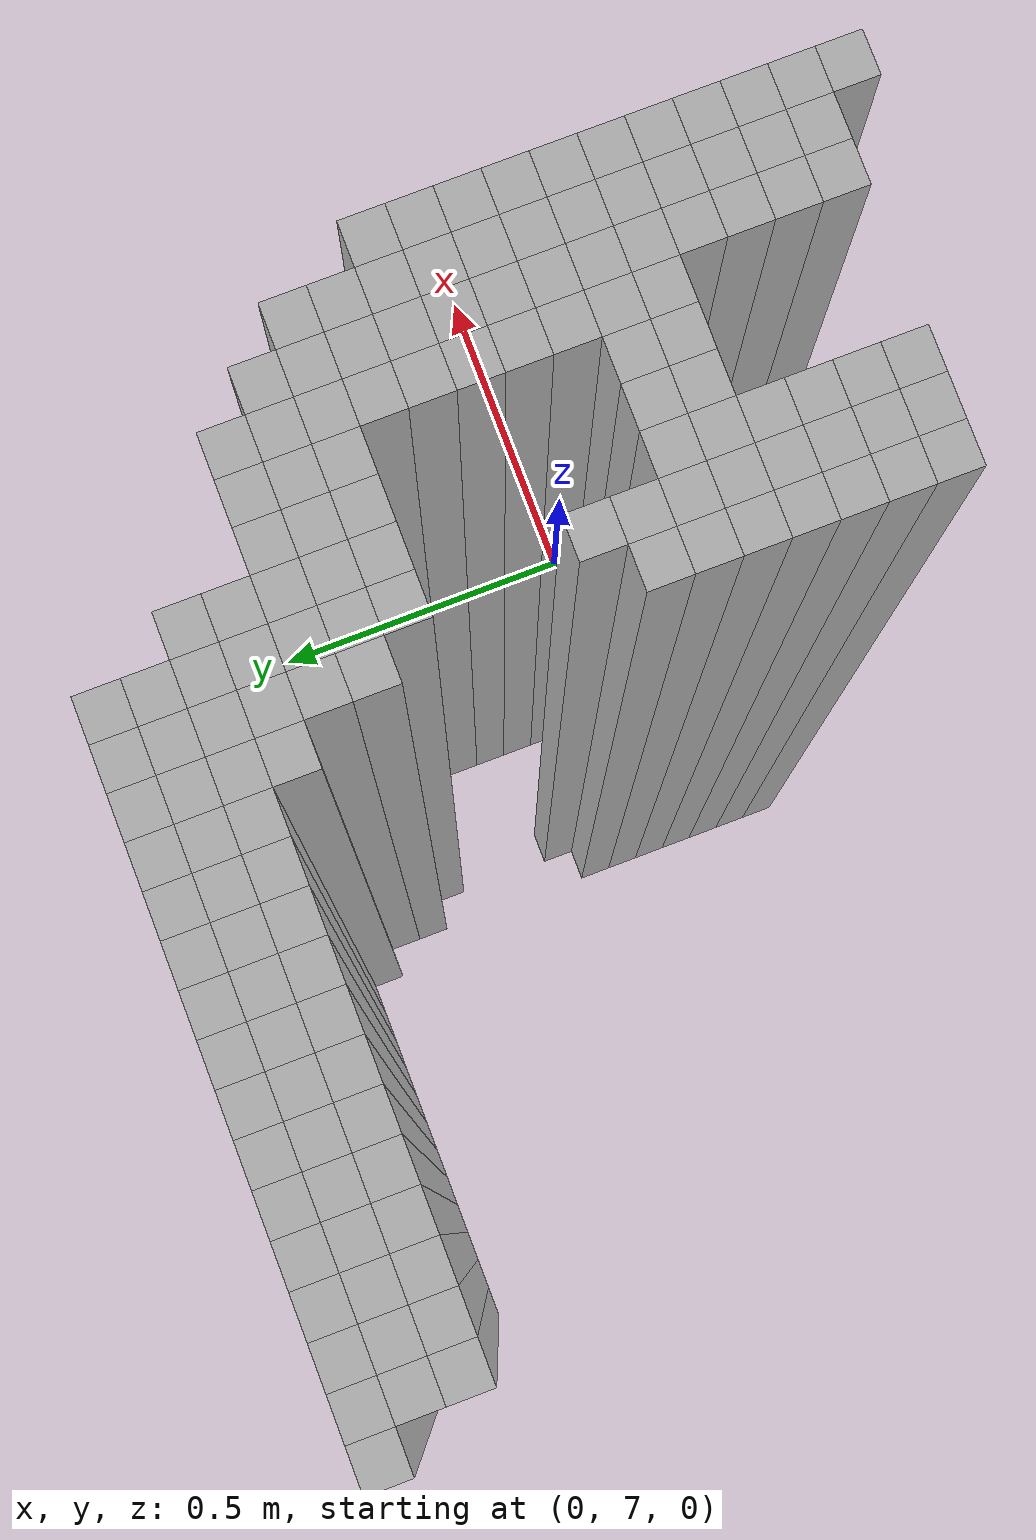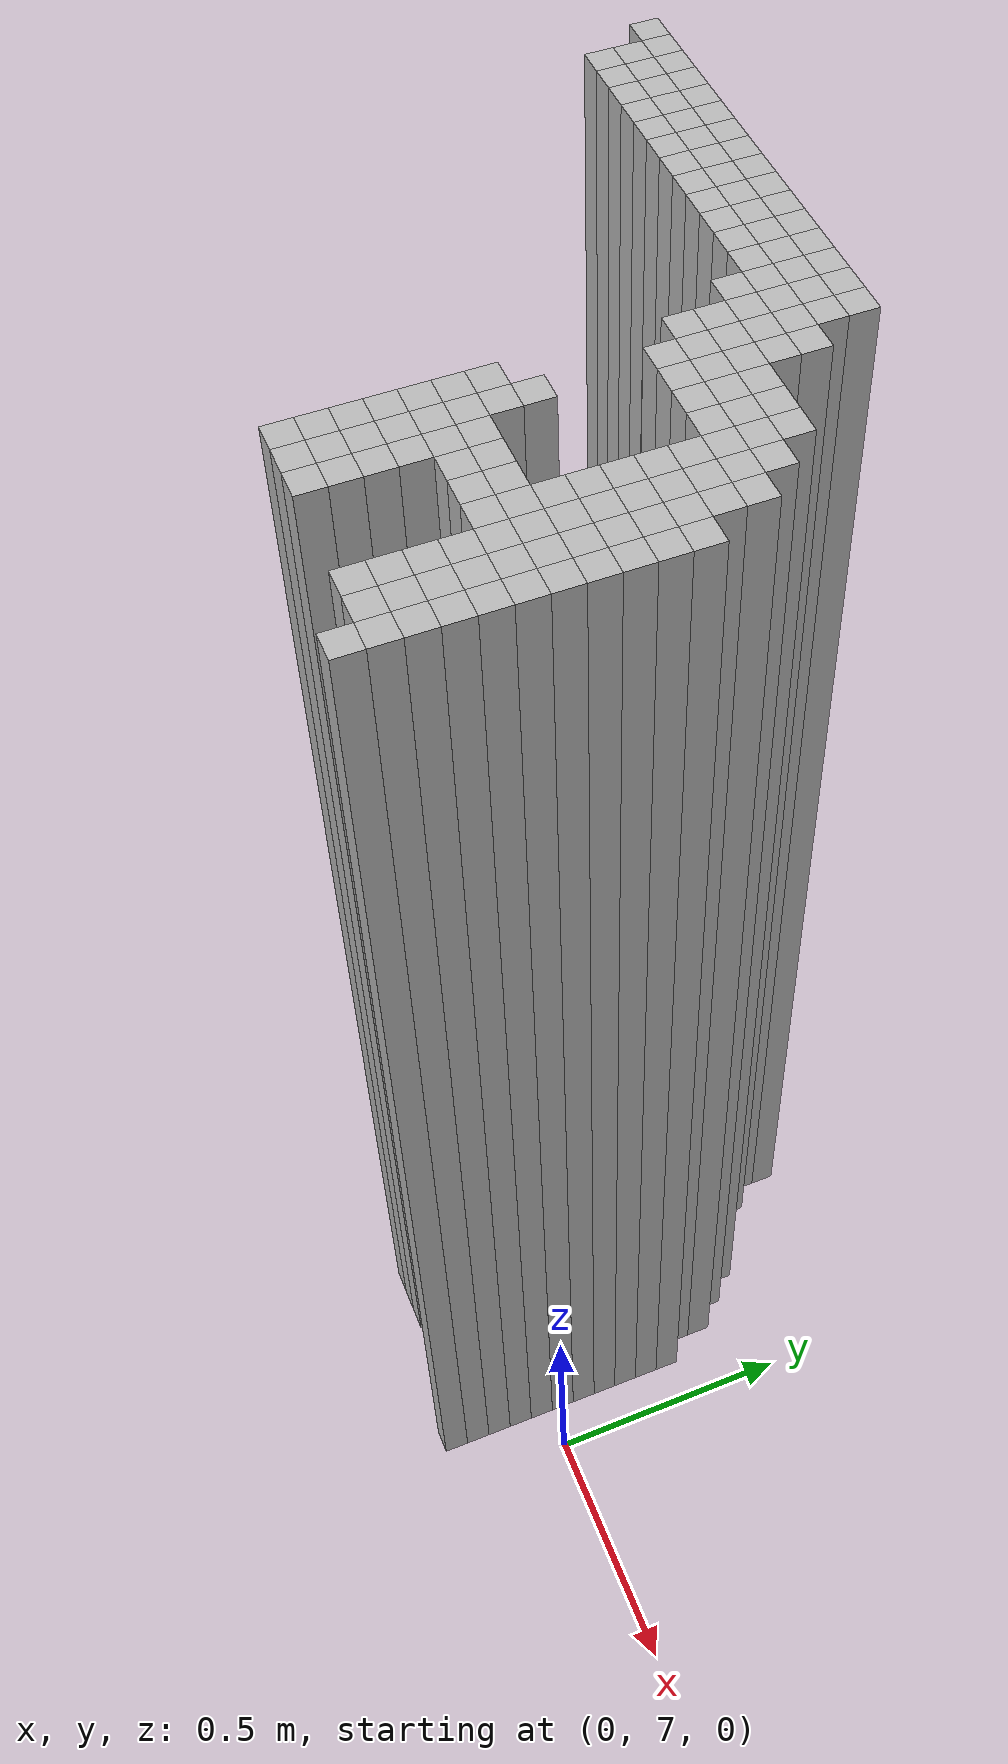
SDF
<sdf version="1.9">
 <world name="map_world">
  <model name="wall_199_0">
   <static>true</static>
   <pose>-1.211 7.680 1.250 0 0 0</pose>
   <link name="link">
    <collision name="collision"><geometry><box><size>0.050 0.050 2.500</size></box></geometry></collision>
    <visual name="visual"><geometry><box><size>0.050 0.050 2.500</size></box></geometry></visual>
   </link>
  </model>
  <model name="wall_200_0">
   <static>true</static>
   <pose>-1.161 7.680 1.250 0 0 0</pose>
   <link name="link">
    <collision name="collision"><geometry><box><size>0.050 0.050 2.500</size></box></geometry></collision>
    <visual name="visual"><geometry><box><size>0.050 0.050 2.500</size></box></geometry></visual>
   </link>
  </model>
  <model name="wall_201_0">
   <static>true</static>
   <pose>-1.111 7.680 1.250 0 0 0</pose>
   <link name="link">
    <collision name="collision"><geometry><box><size>0.050 0.050 2.500</size></box></geometry></collision>
    <visual name="visual"><geometry><box><size>0.050 0.050 2.500</size></box></geometry></visual>
   </link>
  </model>
  <model name="wall_202_0">
   <static>true</static>
   <pose>-1.061 7.680 1.250 0 0 0</pose>
   <link name="link">
    <collision name="collision"><geometry><box><size>0.050 0.050 2.500</size></box></geometry></collision>
    <visual name="visual"><geometry><box><size>0.050 0.050 2.500</size></box></geometry></visual>
   </link>
  </model>
  <model name="wall_203_0">
   <static>true</static>
   <pose>-1.011 7.680 1.250 0 0 0</pose>
   <link name="link">
    <collision name="collision"><geometry><box><size>0.050 0.050 2.500</size></box></geometry></collision>
    <visual name="visual"><geometry><box><size>0.050 0.050 2.500</size></box></geometry></visual>
   </link>
  </model>
  <model name="wall_204_0">
   <static>true</static>
   <pose>-0.961 7.680 1.250 0 0 0</pose>
   <link name="link">
    <collision name="collision"><geometry><box><size>0.050 0.050 2.500</size></box></geometry></collision>
    <visual name="visual"><geometry><box><size>0.050 0.050 2.500</size></box></geometry></visual>
   </link>
  </model>
  <model name="wall_205_0">
   <static>true</static>
   <pose>-0.911 7.680 1.250 0 0 0</pose>
   <link name="link">
    <collision name="collision"><geometry><box><size>0.050 0.050 2.500</size></box></geometry></collision>
    <visual name="visual"><geometry><box><size>0.050 0.050 2.500</size></box></geometry></visual>
   </link>
  </model>
  <model name="wall_206_0">
   <static>true</static>
   <pose>-0.861 7.680 1.250 0 0 0</pose>
   <link name="link">
    <collision name="collision"><geometry><box><size>0.050 0.050 2.500</size></box></geometry></collision>
    <visual name="visual"><geometry><box><size>0.050 0.050 2.500</size></box></geometry></visual>
   </link>
  </model>
  <model name="wall_207_0">
   <static>true</static>
   <pose>-0.811 7.680 1.250 0 0 0</pose>
   <link name="link">
    <collision name="collision"><geometry><box><size>0.050 0.050 2.500</size></box></geometry></collision>
    <visual name="visual"><geometry><box><size>0.050 0.050 2.500</size></box></geometry></visual>
   </link>
  </model>
  <model name="wall_208_0">
   <static>true</static>
   <pose>-0.761 7.680 1.250 0 0 0</pose>
   <link name="link">
    <collision name="collision"><geometry><box><size>0.050 0.050 2.500</size></box></geometry></collision>
    <visual name="visual"><geometry><box><size>0.050 0.050 2.500</size></box></geometry></visual>
   </link>
  </model>
  <model name="wall_209_0">
   <static>true</static>
   <pose>-0.711 7.680 1.250 0 0 0</pose>
   <link name="link">
    <collision name="collision"><geometry><box><size>0.050 0.050 2.500</size></box></geometry></collision>
    <visual name="visual"><geometry><box><size>0.050 0.050 2.500</size></box></geometry></visual>
   </link>
  </model>
  <model name="wall_210_0">
   <static>true</static>
   <pose>-0.661 7.680 1.250 0 0 0</pose>
   <link name="link">
    <collision name="collision"><geometry><box><size>0.050 0.050 2.500</size></box></geometry></collision>
    <visual name="visual"><geometry><box><size>0.050 0.050 2.500</size></box></geometry></visual>
   </link>
  </model>
  <model name="wall_211_0">
   <static>true</static>
   <pose>-0.611 7.680 1.250 0 0 0</pose>
   <link name="link">
    <collision name="collision"><geometry><box><size>0.050 0.050 2.500</size></box></geometry></collision>
    <visual name="visual"><geometry><box><size>0.050 0.050 2.500</size></box></geometry></visual>
   </link>
  </model>
  <model name="wall_212_0">
   <static>true</static>
   <pose>-0.561 7.680 1.250 0 0 0</pose>
   <link name="link">
    <collision name="collision"><geometry><box><size>0.050 0.050 2.500</size></box></geometry></collision>
    <visual name="visual"><geometry><box><size>0.050 0.050 2.500</size></box></geometry></visual>
   </link>
  </model>
  <model name="wall_213_0">
   <static>true</static>
   <pose>-0.511 7.680 1.250 0 0 0</pose>
   <link name="link">
    <collision name="collision"><geometry><box><size>0.050 0.050 2.500</size></box></geometry></collision>
    <visual name="visual"><geometry><box><size>0.050 0.050 2.500</size></box></geometry></visual>
   </link>
  </model>
  <model name="wall_214_0">
   <static>true</static>
   <pose>-0.461 7.680 1.250 0 0 0</pose>
   <link name="link">
    <collision name="collision"><geometry><box><size>0.050 0.050 2.500</size></box></geometry></collision>
    <visual name="visual"><geometry><box><size>0.050 0.050 2.500</size></box></geometry></visual>
   </link>
  </model>
  <model name="wall_200_1">
   <static>true</static>
   <pose>-1.161 7.630 1.250 0 0 0</pose>
   <link name="link">
    <collision name="collision"><geometry><box><size>0.050 0.050 2.500</size></box></geometry></collision>
    <visual name="visual"><geometry><box><size>0.050 0.050 2.500</size></box></geometry></visual>
   </link>
  </model>
  <model name="wall_201_1">
   <static>true</static>
   <pose>-1.111 7.630 1.250 0 0 0</pose>
   <link name="link">
    <collision name="collision"><geometry><box><size>0.050 0.050 2.500</size></box></geometry></collision>
    <visual name="visual"><geometry><box><size>0.050 0.050 2.500</size></box></geometry></visual>
   </link>
  </model>
  <model name="wall_202_1">
   <static>true</static>
   <pose>-1.061 7.630 1.250 0 0 0</pose>
   <link name="link">
    <collision name="collision"><geometry><box><size>0.050 0.050 2.500</size></box></geometry></collision>
    <visual name="visual"><geometry><box><size>0.050 0.050 2.500</size></box></geometry></visual>
   </link>
  </model>
  <model name="wall_203_1">
   <static>true</static>
   <pose>-1.011 7.630 1.250 0 0 0</pose>
   <link name="link">
    <collision name="collision"><geometry><box><size>0.050 0.050 2.500</size></box></geometry></collision>
    <visual name="visual"><geometry><box><size>0.050 0.050 2.500</size></box></geometry></visual>
   </link>
  </model>
  <model name="wall_204_1">
   <static>true</static>
   <pose>-0.961 7.630 1.250 0 0 0</pose>
   <link name="link">
    <collision name="collision"><geometry><box><size>0.050 0.050 2.500</size></box></geometry></collision>
    <visual name="visual"><geometry><box><size>0.050 0.050 2.500</size></box></geometry></visual>
   </link>
  </model>
  <model name="wall_205_1">
   <static>true</static>
   <pose>-0.911 7.630 1.250 0 0 0</pose>
   <link name="link">
    <collision name="collision"><geometry><box><size>0.050 0.050 2.500</size></box></geometry></collision>
    <visual name="visual"><geometry><box><size>0.050 0.050 2.500</size></box></geometry></visual>
   </link>
  </model>
  <model name="wall_206_1">
   <static>true</static>
   <pose>-0.861 7.630 1.250 0 0 0</pose>
   <link name="link">
    <collision name="collision"><geometry><box><size>0.050 0.050 2.500</size></box></geometry></collision>
    <visual name="visual"><geometry><box><size>0.050 0.050 2.500</size></box></geometry></visual>
   </link>
  </model>
  <model name="wall_207_1">
   <static>true</static>
   <pose>-0.811 7.630 1.250 0 0 0</pose>
   <link name="link">
    <collision name="collision"><geometry><box><size>0.050 0.050 2.500</size></box></geometry></collision>
    <visual name="visual"><geometry><box><size>0.050 0.050 2.500</size></box></geometry></visual>
   </link>
  </model>
  <model name="wall_208_1">
   <static>true</static>
   <pose>-0.761 7.630 1.250 0 0 0</pose>
   <link name="link">
    <collision name="collision"><geometry><box><size>0.050 0.050 2.500</size></box></geometry></collision>
    <visual name="visual"><geometry><box><size>0.050 0.050 2.500</size></box></geometry></visual>
   </link>
  </model>
  <model name="wall_209_1">
   <static>true</static>
   <pose>-0.711 7.630 1.250 0 0 0</pose>
   <link name="link">
    <collision name="collision"><geometry><box><size>0.050 0.050 2.500</size></box></geometry></collision>
    <visual name="visual"><geometry><box><size>0.050 0.050 2.500</size></box></geometry></visual>
   </link>
  </model>
  <model name="wall_210_1">
   <static>true</static>
   <pose>-0.661 7.630 1.250 0 0 0</pose>
   <link name="link">
    <collision name="collision"><geometry><box><size>0.050 0.050 2.500</size></box></geometry></collision>
    <visual name="visual"><geometry><box><size>0.050 0.050 2.500</size></box></geometry></visual>
   </link>
  </model>
  <model name="wall_211_1">
   <static>true</static>
   <pose>-0.611 7.630 1.250 0 0 0</pose>
   <link name="link">
    <collision name="collision"><geometry><box><size>0.050 0.050 2.500</size></box></geometry></collision>
    <visual name="visual"><geometry><box><size>0.050 0.050 2.500</size></box></geometry></visual>
   </link>
  </model>
  <model name="wall_212_1">
   <static>true</static>
   <pose>-0.561 7.630 1.250 0 0 0</pose>
   <link name="link">
    <collision name="collision"><geometry><box><size>0.050 0.050 2.500</size></box></geometry></collision>
    <visual name="visual"><geometry><box><size>0.050 0.050 2.500</size></box></geometry></visual>
   </link>
  </model>
  <model name="wall_213_1">
   <static>true</static>
   <pose>-0.511 7.630 1.250 0 0 0</pose>
   <link name="link">
    <collision name="collision"><geometry><box><size>0.050 0.050 2.500</size></box></geometry></collision>
    <visual name="visual"><geometry><box><size>0.050 0.050 2.500</size></box></geometry></visual>
   </link>
  </model>
  <model name="wall_214_1">
   <static>true</static>
   <pose>-0.461 7.630 1.250 0 0 0</pose>
   <link name="link">
    <collision name="collision"><geometry><box><size>0.050 0.050 2.500</size></box></geometry></collision>
    <visual name="visual"><geometry><box><size>0.050 0.050 2.500</size></box></geometry></visual>
   </link>
  </model>
  <model name="wall_200_2">
   <static>true</static>
   <pose>-1.161 7.580 1.250 0 0 0</pose>
   <link name="link">
    <collision name="collision"><geometry><box><size>0.050 0.050 2.500</size></box></geometry></collision>
    <visual name="visual"><geometry><box><size>0.050 0.050 2.500</size></box></geometry></visual>
   </link>
  </model>
  <model name="wall_201_2">
   <static>true</static>
   <pose>-1.111 7.580 1.250 0 0 0</pose>
   <link name="link">
    <collision name="collision"><geometry><box><size>0.050 0.050 2.500</size></box></geometry></collision>
    <visual name="visual"><geometry><box><size>0.050 0.050 2.500</size></box></geometry></visual>
   </link>
  </model>
  <model name="wall_202_2">
   <static>true</static>
   <pose>-1.061 7.580 1.250 0 0 0</pose>
   <link name="link">
    <collision name="collision"><geometry><box><size>0.050 0.050 2.500</size></box></geometry></collision>
    <visual name="visual"><geometry><box><size>0.050 0.050 2.500</size></box></geometry></visual>
   </link>
  </model>
  <model name="wall_203_2">
   <static>true</static>
   <pose>-1.011 7.580 1.250 0 0 0</pose>
   <link name="link">
    <collision name="collision"><geometry><box><size>0.050 0.050 2.500</size></box></geometry></collision>
    <visual name="visual"><geometry><box><size>0.050 0.050 2.500</size></box></geometry></visual>
   </link>
  </model>
  <model name="wall_204_2">
   <static>true</static>
   <pose>-0.961 7.580 1.250 0 0 0</pose>
   <link name="link">
    <collision name="collision"><geometry><box><size>0.050 0.050 2.500</size></box></geometry></collision>
    <visual name="visual"><geometry><box><size>0.050 0.050 2.500</size></box></geometry></visual>
   </link>
  </model>
  <model name="wall_205_2">
   <static>true</static>
   <pose>-0.911 7.580 1.250 0 0 0</pose>
   <link name="link">
    <collision name="collision"><geometry><box><size>0.050 0.050 2.500</size></box></geometry></collision>
    <visual name="visual"><geometry><box><size>0.050 0.050 2.500</size></box></geometry></visual>
   </link>
  </model>
  <model name="wall_206_2">
   <static>true</static>
   <pose>-0.861 7.580 1.250 0 0 0</pose>
   <link name="link">
    <collision name="collision"><geometry><box><size>0.050 0.050 2.500</size></box></geometry></collision>
    <visual name="visual"><geometry><box><size>0.050 0.050 2.500</size></box></geometry></visual>
   </link>
  </model>
  <model name="wall_207_2">
   <static>true</static>
   <pose>-0.811 7.580 1.250 0 0 0</pose>
   <link name="link">
    <collision name="collision"><geometry><box><size>0.050 0.050 2.500</size></box></geometry></collision>
    <visual name="visual"><geometry><box><size>0.050 0.050 2.500</size></box></geometry></visual>
   </link>
  </model>
  <model name="wall_208_2">
   <static>true</static>
   <pose>-0.761 7.580 1.250 0 0 0</pose>
   <link name="link">
    <collision name="collision"><geometry><box><size>0.050 0.050 2.500</size></box></geometry></collision>
    <visual name="visual"><geometry><box><size>0.050 0.050 2.500</size></box></geometry></visual>
   </link>
  </model>
  <model name="wall_209_2">
   <static>true</static>
   <pose>-0.711 7.580 1.250 0 0 0</pose>
   <link name="link">
    <collision name="collision"><geometry><box><size>0.050 0.050 2.500</size></box></geometry></collision>
    <visual name="visual"><geometry><box><size>0.050 0.050 2.500</size></box></geometry></visual>
   </link>
  </model>
  <model name="wall_210_2">
   <static>true</static>
   <pose>-0.661 7.580 1.250 0 0 0</pose>
   <link name="link">
    <collision name="collision"><geometry><box><size>0.050 0.050 2.500</size></box></geometry></collision>
    <visual name="visual"><geometry><box><size>0.050 0.050 2.500</size></box></geometry></visual>
   </link>
  </model>
  <model name="wall_211_2">
   <static>true</static>
   <pose>-0.611 7.580 1.250 0 0 0</pose>
   <link name="link">
    <collision name="collision"><geometry><box><size>0.050 0.050 2.500</size></box></geometry></collision>
    <visual name="visual"><geometry><box><size>0.050 0.050 2.500</size></box></geometry></visual>
   </link>
  </model>
  <model name="wall_212_2">
   <static>true</static>
   <pose>-0.561 7.580 1.250 0 0 0</pose>
   <link name="link">
    <collision name="collision"><geometry><box><size>0.050 0.050 2.500</size></box></geometry></collision>
    <visual name="visual"><geometry><box><size>0.050 0.050 2.500</size></box></geometry></visual>
   </link>
  </model>
  <model name="wall_213_2">
   <static>true</static>
   <pose>-0.511 7.580 1.250 0 0 0</pose>
   <link name="link">
    <collision name="collision"><geometry><box><size>0.050 0.050 2.500</size></box></geometry></collision>
    <visual name="visual"><geometry><box><size>0.050 0.050 2.500</size></box></geometry></visual>
   </link>
  </model>
  <model name="wall_214_2">
   <static>true</static>
   <pose>-0.461 7.580 1.250 0 0 0</pose>
   <link name="link">
    <collision name="collision"><geometry><box><size>0.050 0.050 2.500</size></box></geometry></collision>
    <visual name="visual"><geometry><box><size>0.050 0.050 2.500</size></box></geometry></visual>
   </link>
  </model>
  <model name="wall_215_2">
   <static>true</static>
   <pose>-0.411 7.580 1.250 0 0 0</pose>
   <link name="link">
    <collision name="collision"><geometry><box><size>0.050 0.050 2.500</size></box></geometry></collision>
    <visual name="visual"><geometry><box><size>0.050 0.050 2.500</size></box></geometry></visual>
   </link>
  </model>
  <model name="wall_212_3">
   <static>true</static>
   <pose>-0.561 7.530 1.250 0 0 0</pose>
   <link name="link">
    <collision name="collision"><geometry><box><size>0.050 0.050 2.500</size></box></geometry></collision>
    <visual name="visual"><geometry><box><size>0.050 0.050 2.500</size></box></geometry></visual>
   </link>
  </model>
  <model name="wall_213_3">
   <static>true</static>
   <pose>-0.511 7.530 1.250 0 0 0</pose>
   <link name="link">
    <collision name="collision"><geometry><box><size>0.050 0.050 2.500</size></box></geometry></collision>
    <visual name="visual"><geometry><box><size>0.050 0.050 2.500</size></box></geometry></visual>
   </link>
  </model>
  <model name="wall_214_3">
   <static>true</static>
   <pose>-0.461 7.530 1.250 0 0 0</pose>
   <link name="link">
    <collision name="collision"><geometry><box><size>0.050 0.050 2.500</size></box></geometry></collision>
    <visual name="visual"><geometry><box><size>0.050 0.050 2.500</size></box></geometry></visual>
   </link>
  </model>
  <model name="wall_215_3">
   <static>true</static>
   <pose>-0.411 7.530 1.250 0 0 0</pose>
   <link name="link">
    <collision name="collision"><geometry><box><size>0.050 0.050 2.500</size></box></geometry></collision>
    <visual name="visual"><geometry><box><size>0.050 0.050 2.500</size></box></geometry></visual>
   </link>
  </model>
  <model name="wall_213_4">
   <static>true</static>
   <pose>-0.511 7.480 1.250 0 0 0</pose>
   <link name="link">
    <collision name="collision"><geometry><box><size>0.050 0.050 2.500</size></box></geometry></collision>
    <visual name="visual"><geometry><box><size>0.050 0.050 2.500</size></box></geometry></visual>
   </link>
  </model>
  <model name="wall_214_4">
   <static>true</static>
   <pose>-0.461 7.480 1.250 0 0 0</pose>
   <link name="link">
    <collision name="collision"><geometry><box><size>0.050 0.050 2.500</size></box></geometry></collision>
    <visual name="visual"><geometry><box><size>0.050 0.050 2.500</size></box></geometry></visual>
   </link>
  </model>
  <model name="wall_215_4">
   <static>true</static>
   <pose>-0.411 7.480 1.250 0 0 0</pose>
   <link name="link">
    <collision name="collision"><geometry><box><size>0.050 0.050 2.500</size></box></geometry></collision>
    <visual name="visual"><geometry><box><size>0.050 0.050 2.500</size></box></geometry></visual>
   </link>
  </model>
  <model name="wall_216_4">
   <static>true</static>
   <pose>-0.361 7.480 1.250 0 0 0</pose>
   <link name="link">
    <collision name="collision"><geometry><box><size>0.050 0.050 2.500</size></box></geometry></collision>
    <visual name="visual"><geometry><box><size>0.050 0.050 2.500</size></box></geometry></visual>
   </link>
  </model>
  <model name="wall_217_4">
   <static>true</static>
   <pose>-0.311 7.480 1.250 0 0 0</pose>
   <link name="link">
    <collision name="collision"><geometry><box><size>0.050 0.050 2.500</size></box></geometry></collision>
    <visual name="visual"><geometry><box><size>0.050 0.050 2.500</size></box></geometry></visual>
   </link>
  </model>
  <model name="wall_218_4">
   <static>true</static>
   <pose>-0.261 7.480 1.250 0 0 0</pose>
   <link name="link">
    <collision name="collision"><geometry><box><size>0.050 0.050 2.500</size></box></geometry></collision>
    <visual name="visual"><geometry><box><size>0.050 0.050 2.500</size></box></geometry></visual>
   </link>
  </model>
  <model name="wall_213_5">
   <static>true</static>
   <pose>-0.511 7.430 1.250 0 0 0</pose>
   <link name="link">
    <collision name="collision"><geometry><box><size>0.050 0.050 2.500</size></box></geometry></collision>
    <visual name="visual"><geometry><box><size>0.050 0.050 2.500</size></box></geometry></visual>
   </link>
  </model>
  <model name="wall_214_5">
   <static>true</static>
   <pose>-0.461 7.430 1.250 0 0 0</pose>
   <link name="link">
    <collision name="collision"><geometry><box><size>0.050 0.050 2.500</size></box></geometry></collision>
    <visual name="visual"><geometry><box><size>0.050 0.050 2.500</size></box></geometry></visual>
   </link>
  </model>
  <model name="wall_215_5">
   <static>true</static>
   <pose>-0.411 7.430 1.250 0 0 0</pose>
   <link name="link">
    <collision name="collision"><geometry><box><size>0.050 0.050 2.500</size></box></geometry></collision>
    <visual name="visual"><geometry><box><size>0.050 0.050 2.500</size></box></geometry></visual>
   </link>
  </model>
  <model name="wall_216_5">
   <static>true</static>
   <pose>-0.361 7.430 1.250 0 0 0</pose>
   <link name="link">
    <collision name="collision"><geometry><box><size>0.050 0.050 2.500</size></box></geometry></collision>
    <visual name="visual"><geometry><box><size>0.050 0.050 2.500</size></box></geometry></visual>
   </link>
  </model>
  <model name="wall_217_5">
   <static>true</static>
   <pose>-0.311 7.430 1.250 0 0 0</pose>
   <link name="link">
    <collision name="collision"><geometry><box><size>0.050 0.050 2.500</size></box></geometry></collision>
    <visual name="visual"><geometry><box><size>0.050 0.050 2.500</size></box></geometry></visual>
   </link>
  </model>
  <model name="wall_218_5">
   <static>true</static>
   <pose>-0.261 7.430 1.250 0 0 0</pose>
   <link name="link">
    <collision name="collision"><geometry><box><size>0.050 0.050 2.500</size></box></geometry></collision>
    <visual name="visual"><geometry><box><size>0.050 0.050 2.500</size></box></geometry></visual>
   </link>
  </model>
  <model name="wall_219_5">
   <static>true</static>
   <pose>-0.211 7.430 1.250 0 0 0</pose>
   <link name="link">
    <collision name="collision"><geometry><box><size>0.050 0.050 2.500</size></box></geometry></collision>
    <visual name="visual"><geometry><box><size>0.050 0.050 2.500</size></box></geometry></visual>
   </link>
  </model>
  <model name="wall_214_6">
   <static>true</static>
   <pose>-0.461 7.380 1.250 0 0 0</pose>
   <link name="link">
    <collision name="collision"><geometry><box><size>0.050 0.050 2.500</size></box></geometry></collision>
    <visual name="visual"><geometry><box><size>0.050 0.050 2.500</size></box></geometry></visual>
   </link>
  </model>
  <model name="wall_215_6">
   <static>true</static>
   <pose>-0.411 7.380 1.250 0 0 0</pose>
   <link name="link">
    <collision name="collision"><geometry><box><size>0.050 0.050 2.500</size></box></geometry></collision>
    <visual name="visual"><geometry><box><size>0.050 0.050 2.500</size></box></geometry></visual>
   </link>
  </model>
  <model name="wall_216_6">
   <static>true</static>
   <pose>-0.361 7.380 1.250 0 0 0</pose>
   <link name="link">
    <collision name="collision"><geometry><box><size>0.050 0.050 2.500</size></box></geometry></collision>
    <visual name="visual"><geometry><box><size>0.050 0.050 2.500</size></box></geometry></visual>
   </link>
  </model>
  <model name="wall_217_6">
   <static>true</static>
   <pose>-0.311 7.380 1.250 0 0 0</pose>
   <link name="link">
    <collision name="collision"><geometry><box><size>0.050 0.050 2.500</size></box></geometry></collision>
    <visual name="visual"><geometry><box><size>0.050 0.050 2.500</size></box></geometry></visual>
   </link>
  </model>
  <model name="wall_218_6">
   <static>true</static>
   <pose>-0.261 7.380 1.250 0 0 0</pose>
   <link name="link">
    <collision name="collision"><geometry><box><size>0.050 0.050 2.500</size></box></geometry></collision>
    <visual name="visual"><geometry><box><size>0.050 0.050 2.500</size></box></geometry></visual>
   </link>
  </model>
  <model name="wall_219_6">
   <static>true</static>
   <pose>-0.211 7.380 1.250 0 0 0</pose>
   <link name="link">
    <collision name="collision"><geometry><box><size>0.050 0.050 2.500</size></box></geometry></collision>
    <visual name="visual"><geometry><box><size>0.050 0.050 2.500</size></box></geometry></visual>
   </link>
  </model>
  <model name="wall_220_6">
   <static>true</static>
   <pose>-0.161 7.380 1.250 0 0 0</pose>
   <link name="link">
    <collision name="collision"><geometry><box><size>0.050 0.050 2.500</size></box></geometry></collision>
    <visual name="visual"><geometry><box><size>0.050 0.050 2.500</size></box></geometry></visual>
   </link>
  </model>
  <model name="wall_218_7">
   <static>true</static>
   <pose>-0.261 7.330 1.250 0 0 0</pose>
   <link name="link">
    <collision name="collision"><geometry><box><size>0.050 0.050 2.500</size></box></geometry></collision>
    <visual name="visual"><geometry><box><size>0.050 0.050 2.500</size></box></geometry></visual>
   </link>
  </model>
  <model name="wall_219_7">
   <static>true</static>
   <pose>-0.211 7.330 1.250 0 0 0</pose>
   <link name="link">
    <collision name="collision"><geometry><box><size>0.050 0.050 2.500</size></box></geometry></collision>
    <visual name="visual"><geometry><box><size>0.050 0.050 2.500</size></box></geometry></visual>
   </link>
  </model>
  <model name="wall_220_7">
   <static>true</static>
   <pose>-0.161 7.330 1.250 0 0 0</pose>
   <link name="link">
    <collision name="collision"><geometry><box><size>0.050 0.050 2.500</size></box></geometry></collision>
    <visual name="visual"><geometry><box><size>0.050 0.050 2.500</size></box></geometry></visual>
   </link>
  </model>
  <model name="wall_218_8">
   <static>true</static>
   <pose>-0.261 7.280 1.250 0 0 0</pose>
   <link name="link">
    <collision name="collision"><geometry><box><size>0.050 0.050 2.500</size></box></geometry></collision>
    <visual name="visual"><geometry><box><size>0.050 0.050 2.500</size></box></geometry></visual>
   </link>
  </model>
  <model name="wall_219_8">
   <static>true</static>
   <pose>-0.211 7.280 1.250 0 0 0</pose>
   <link name="link">
    <collision name="collision"><geometry><box><size>0.050 0.050 2.500</size></box></geometry></collision>
    <visual name="visual"><geometry><box><size>0.050 0.050 2.500</size></box></geometry></visual>
   </link>
  </model>
  <model name="wall_220_8">
   <static>true</static>
   <pose>-0.161 7.280 1.250 0 0 0</pose>
   <link name="link">
    <collision name="collision"><geometry><box><size>0.050 0.050 2.500</size></box></geometry></collision>
    <visual name="visual"><geometry><box><size>0.050 0.050 2.500</size></box></geometry></visual>
   </link>
  </model>
  <model name="wall_221_8">
   <static>true</static>
   <pose>-0.111 7.280 1.250 0 0 0</pose>
   <link name="link">
    <collision name="collision"><geometry><box><size>0.050 0.050 2.500</size></box></geometry></collision>
    <visual name="visual"><geometry><box><size>0.050 0.050 2.500</size></box></geometry></visual>
   </link>
  </model>
  <model name="wall_218_9">
   <static>true</static>
   <pose>-0.261 7.230 1.250 0 0 0</pose>
   <link name="link">
    <collision name="collision"><geometry><box><size>0.050 0.050 2.500</size></box></geometry></collision>
    <visual name="visual"><geometry><box><size>0.050 0.050 2.500</size></box></geometry></visual>
   </link>
  </model>
  <model name="wall_219_9">
   <static>true</static>
   <pose>-0.211 7.230 1.250 0 0 0</pose>
   <link name="link">
    <collision name="collision"><geometry><box><size>0.050 0.050 2.500</size></box></geometry></collision>
    <visual name="visual"><geometry><box><size>0.050 0.050 2.500</size></box></geometry></visual>
   </link>
  </model>
  <model name="wall_220_9">
   <static>true</static>
   <pose>-0.161 7.230 1.250 0 0 0</pose>
   <link name="link">
    <collision name="collision"><geometry><box><size>0.050 0.050 2.500</size></box></geometry></collision>
    <visual name="visual"><geometry><box><size>0.050 0.050 2.500</size></box></geometry></visual>
   </link>
  </model>
  <model name="wall_221_9">
   <static>true</static>
   <pose>-0.111 7.230 1.250 0 0 0</pose>
   <link name="link">
    <collision name="collision"><geometry><box><size>0.050 0.050 2.500</size></box></geometry></collision>
    <visual name="visual"><geometry><box><size>0.050 0.050 2.500</size></box></geometry></visual>
   </link>
  </model>
  <model name="wall_214_10">
   <static>true</static>
   <pose>-0.461 7.180 1.250 0 0 0</pose>
   <link name="link">
    <collision name="collision"><geometry><box><size>0.050 0.050 2.500</size></box></geometry></collision>
    <visual name="visual"><geometry><box><size>0.050 0.050 2.500</size></box></geometry></visual>
   </link>
  </model>
  <model name="wall_218_10">
   <static>true</static>
   <pose>-0.261 7.180 1.250 0 0 0</pose>
   <link name="link">
    <collision name="collision"><geometry><box><size>0.050 0.050 2.500</size></box></geometry></collision>
    <visual name="visual"><geometry><box><size>0.050 0.050 2.500</size></box></geometry></visual>
   </link>
  </model>
  <model name="wall_219_10">
   <static>true</static>
   <pose>-0.211 7.180 1.250 0 0 0</pose>
   <link name="link">
    <collision name="collision"><geometry><box><size>0.050 0.050 2.500</size></box></geometry></collision>
    <visual name="visual"><geometry><box><size>0.050 0.050 2.500</size></box></geometry></visual>
   </link>
  </model>
  <model name="wall_220_10">
   <static>true</static>
   <pose>-0.161 7.180 1.250 0 0 0</pose>
   <link name="link">
    <collision name="collision"><geometry><box><size>0.050 0.050 2.500</size></box></geometry></collision>
    <visual name="visual"><geometry><box><size>0.050 0.050 2.500</size></box></geometry></visual>
   </link>
  </model>
  <model name="wall_221_10">
   <static>true</static>
   <pose>-0.111 7.180 1.250 0 0 0</pose>
   <link name="link">
    <collision name="collision"><geometry><box><size>0.050 0.050 2.500</size></box></geometry></collision>
    <visual name="visual"><geometry><box><size>0.050 0.050 2.500</size></box></geometry></visual>
   </link>
  </model>
  <model name="wall_213_11">
   <static>true</static>
   <pose>-0.511 7.130 1.250 0 0 0</pose>
   <link name="link">
    <collision name="collision"><geometry><box><size>0.050 0.050 2.500</size></box></geometry></collision>
    <visual name="visual"><geometry><box><size>0.050 0.050 2.500</size></box></geometry></visual>
   </link>
  </model>
  <model name="wall_214_11">
   <static>true</static>
   <pose>-0.461 7.130 1.250 0 0 0</pose>
   <link name="link">
    <collision name="collision"><geometry><box><size>0.050 0.050 2.500</size></box></geometry></collision>
    <visual name="visual"><geometry><box><size>0.050 0.050 2.500</size></box></geometry></visual>
   </link>
  </model>
  <model name="wall_218_11">
   <static>true</static>
   <pose>-0.261 7.130 1.250 0 0 0</pose>
   <link name="link">
    <collision name="collision"><geometry><box><size>0.050 0.050 2.500</size></box></geometry></collision>
    <visual name="visual"><geometry><box><size>0.050 0.050 2.500</size></box></geometry></visual>
   </link>
  </model>
  <model name="wall_219_11">
   <static>true</static>
   <pose>-0.211 7.130 1.250 0 0 0</pose>
   <link name="link">
    <collision name="collision"><geometry><box><size>0.050 0.050 2.500</size></box></geometry></collision>
    <visual name="visual"><geometry><box><size>0.050 0.050 2.500</size></box></geometry></visual>
   </link>
  </model>
  <model name="wall_220_11">
   <static>true</static>
   <pose>-0.161 7.130 1.250 0 0 0</pose>
   <link name="link">
    <collision name="collision"><geometry><box><size>0.050 0.050 2.500</size></box></geometry></collision>
    <visual name="visual"><geometry><box><size>0.050 0.050 2.500</size></box></geometry></visual>
   </link>
  </model>
  <model name="wall_221_11">
   <static>true</static>
   <pose>-0.111 7.130 1.250 0 0 0</pose>
   <link name="link">
    <collision name="collision"><geometry><box><size>0.050 0.050 2.500</size></box></geometry></collision>
    <visual name="visual"><geometry><box><size>0.050 0.050 2.500</size></box></geometry></visual>
   </link>
  </model>
  <model name="wall_213_12">
   <static>true</static>
   <pose>-0.511 7.080 1.250 0 0 0</pose>
   <link name="link">
    <collision name="collision"><geometry><box><size>0.050 0.050 2.500</size></box></geometry></collision>
    <visual name="visual"><geometry><box><size>0.050 0.050 2.500</size></box></geometry></visual>
   </link>
  </model>
  <model name="wall_214_12">
   <static>true</static>
   <pose>-0.461 7.080 1.250 0 0 0</pose>
   <link name="link">
    <collision name="collision"><geometry><box><size>0.050 0.050 2.500</size></box></geometry></collision>
    <visual name="visual"><geometry><box><size>0.050 0.050 2.500</size></box></geometry></visual>
   </link>
  </model>
  <model name="wall_215_12">
   <static>true</static>
   <pose>-0.411 7.080 1.250 0 0 0</pose>
   <link name="link">
    <collision name="collision"><geometry><box><size>0.050 0.050 2.500</size></box></geometry></collision>
    <visual name="visual"><geometry><box><size>0.050 0.050 2.500</size></box></geometry></visual>
   </link>
  </model>
  <model name="wall_216_12">
   <static>true</static>
   <pose>-0.361 7.080 1.250 0 0 0</pose>
   <link name="link">
    <collision name="collision"><geometry><box><size>0.050 0.050 2.500</size></box></geometry></collision>
    <visual name="visual"><geometry><box><size>0.050 0.050 2.500</size></box></geometry></visual>
   </link>
  </model>
  <model name="wall_217_12">
   <static>true</static>
   <pose>-0.311 7.080 1.250 0 0 0</pose>
   <link name="link">
    <collision name="collision"><geometry><box><size>0.050 0.050 2.500</size></box></geometry></collision>
    <visual name="visual"><geometry><box><size>0.050 0.050 2.500</size></box></geometry></visual>
   </link>
  </model>
  <model name="wall_218_12">
   <static>true</static>
   <pose>-0.261 7.080 1.250 0 0 0</pose>
   <link name="link">
    <collision name="collision"><geometry><box><size>0.050 0.050 2.500</size></box></geometry></collision>
    <visual name="visual"><geometry><box><size>0.050 0.050 2.500</size></box></geometry></visual>
   </link>
  </model>
  <model name="wall_219_12">
   <static>true</static>
   <pose>-0.211 7.080 1.250 0 0 0</pose>
   <link name="link">
    <collision name="collision"><geometry><box><size>0.050 0.050 2.500</size></box></geometry></collision>
    <visual name="visual"><geometry><box><size>0.050 0.050 2.500</size></box></geometry></visual>
   </link>
  </model>
  <model name="wall_220_12">
   <static>true</static>
   <pose>-0.161 7.080 1.250 0 0 0</pose>
   <link name="link">
    <collision name="collision"><geometry><box><size>0.050 0.050 2.500</size></box></geometry></collision>
    <visual name="visual"><geometry><box><size>0.050 0.050 2.500</size></box></geometry></visual>
   </link>
  </model>
  <model name="wall_221_12">
   <static>true</static>
   <pose>-0.111 7.080 1.250 0 0 0</pose>
   <link name="link">
    <collision name="collision"><geometry><box><size>0.050 0.050 2.500</size></box></geometry></collision>
    <visual name="visual"><geometry><box><size>0.050 0.050 2.500</size></box></geometry></visual>
   </link>
  </model>
  <model name="wall_213_13">
   <static>true</static>
   <pose>-0.511 7.030 1.250 0 0 0</pose>
   <link name="link">
    <collision name="collision"><geometry><box><size>0.050 0.050 2.500</size></box></geometry></collision>
    <visual name="visual"><geometry><box><size>0.050 0.050 2.500</size></box></geometry></visual>
   </link>
  </model>
  <model name="wall_214_13">
   <static>true</static>
   <pose>-0.461 7.030 1.250 0 0 0</pose>
   <link name="link">
    <collision name="collision"><geometry><box><size>0.050 0.050 2.500</size></box></geometry></collision>
    <visual name="visual"><geometry><box><size>0.050 0.050 2.500</size></box></geometry></visual>
   </link>
  </model>
  <model name="wall_215_13">
   <static>true</static>
   <pose>-0.411 7.030 1.250 0 0 0</pose>
   <link name="link">
    <collision name="collision"><geometry><box><size>0.050 0.050 2.500</size></box></geometry></collision>
    <visual name="visual"><geometry><box><size>0.050 0.050 2.500</size></box></geometry></visual>
   </link>
  </model>
  <model name="wall_216_13">
   <static>true</static>
   <pose>-0.361 7.030 1.250 0 0 0</pose>
   <link name="link">
    <collision name="collision"><geometry><box><size>0.050 0.050 2.500</size></box></geometry></collision>
    <visual name="visual"><geometry><box><size>0.050 0.050 2.500</size></box></geometry></visual>
   </link>
  </model>
  <model name="wall_217_13">
   <static>true</static>
   <pose>-0.311 7.030 1.250 0 0 0</pose>
   <link name="link">
    <collision name="collision"><geometry><box><size>0.050 0.050 2.500</size></box></geometry></collision>
    <visual name="visual"><geometry><box><size>0.050 0.050 2.500</size></box></geometry></visual>
   </link>
  </model>
  <model name="wall_218_13">
   <static>true</static>
   <pose>-0.261 7.030 1.250 0 0 0</pose>
   <link name="link">
    <collision name="collision"><geometry><box><size>0.050 0.050 2.500</size></box></geometry></collision>
    <visual name="visual"><geometry><box><size>0.050 0.050 2.500</size></box></geometry></visual>
   </link>
  </model>
  <model name="wall_219_13">
   <static>true</static>
   <pose>-0.211 7.030 1.250 0 0 0</pose>
   <link name="link">
    <collision name="collision"><geometry><box><size>0.050 0.050 2.500</size></box></geometry></collision>
    <visual name="visual"><geometry><box><size>0.050 0.050 2.500</size></box></geometry></visual>
   </link>
  </model>
  <model name="wall_220_13">
   <static>true</static>
   <pose>-0.161 7.030 1.250 0 0 0</pose>
   <link name="link">
    <collision name="collision"><geometry><box><size>0.050 0.050 2.500</size></box></geometry></collision>
    <visual name="visual"><geometry><box><size>0.050 0.050 2.500</size></box></geometry></visual>
   </link>
  </model>
  <model name="wall_221_13">
   <static>true</static>
   <pose>-0.111 7.030 1.250 0 0 0</pose>
   <link name="link">
    <collision name="collision"><geometry><box><size>0.050 0.050 2.500</size></box></geometry></collision>
    <visual name="visual"><geometry><box><size>0.050 0.050 2.500</size></box></geometry></visual>
   </link>
  </model>
  <model name="wall_213_14">
   <static>true</static>
   <pose>-0.511 6.980 1.250 0 0 0</pose>
   <link name="link">
    <collision name="collision"><geometry><box><size>0.050 0.050 2.500</size></box></geometry></collision>
    <visual name="visual"><geometry><box><size>0.050 0.050 2.500</size></box></geometry></visual>
   </link>
  </model>
  <model name="wall_214_14">
   <static>true</static>
   <pose>-0.461 6.980 1.250 0 0 0</pose>
   <link name="link">
    <collision name="collision"><geometry><box><size>0.050 0.050 2.500</size></box></geometry></collision>
    <visual name="visual"><geometry><box><size>0.050 0.050 2.500</size></box></geometry></visual>
   </link>
  </model>
  <model name="wall_215_14">
   <static>true</static>
   <pose>-0.411 6.980 1.250 0 0 0</pose>
   <link name="link">
    <collision name="collision"><geometry><box><size>0.050 0.050 2.500</size></box></geometry></collision>
    <visual name="visual"><geometry><box><size>0.050 0.050 2.500</size></box></geometry></visual>
   </link>
  </model>
  <model name="wall_219_14">
   <static>true</static>
   <pose>-0.211 6.980 1.250 0 0 0</pose>
   <link name="link">
    <collision name="collision"><geometry><box><size>0.050 0.050 2.500</size></box></geometry></collision>
    <visual name="visual"><geometry><box><size>0.050 0.050 2.500</size></box></geometry></visual>
   </link>
  </model>
  <model name="wall_220_14">
   <static>true</static>
   <pose>-0.161 6.980 1.250 0 0 0</pose>
   <link name="link">
    <collision name="collision"><geometry><box><size>0.050 0.050 2.500</size></box></geometry></collision>
    <visual name="visual"><geometry><box><size>0.050 0.050 2.500</size></box></geometry></visual>
   </link>
  </model>
  <model name="wall_221_14">
   <static>true</static>
   <pose>-0.111 6.980 1.250 0 0 0</pose>
   <link name="link">
    <collision name="collision"><geometry><box><size>0.050 0.050 2.500</size></box></geometry></collision>
    <visual name="visual"><geometry><box><size>0.050 0.050 2.500</size></box></geometry></visual>
   </link>
  </model>
  <model name="wall_213_15">
   <static>true</static>
   <pose>-0.511 6.930 1.250 0 0 0</pose>
   <link name="link">
    <collision name="collision"><geometry><box><size>0.050 0.050 2.500</size></box></geometry></collision>
    <visual name="visual"><geometry><box><size>0.050 0.050 2.500</size></box></geometry></visual>
   </link>
  </model>
  <model name="wall_214_15">
   <static>true</static>
   <pose>-0.461 6.930 1.250 0 0 0</pose>
   <link name="link">
    <collision name="collision"><geometry><box><size>0.050 0.050 2.500</size></box></geometry></collision>
    <visual name="visual"><geometry><box><size>0.050 0.050 2.500</size></box></geometry></visual>
   </link>
  </model>
  <model name="wall_215_15">
   <static>true</static>
   <pose>-0.411 6.930 1.250 0 0 0</pose>
   <link name="link">
    <collision name="collision"><geometry><box><size>0.050 0.050 2.500</size></box></geometry></collision>
    <visual name="visual"><geometry><box><size>0.050 0.050 2.500</size></box></geometry></visual>
   </link>
  </model>
  <model name="wall_219_15">
   <static>true</static>
   <pose>-0.211 6.930 1.250 0 0 0</pose>
   <link name="link">
    <collision name="collision"><geometry><box><size>0.050 0.050 2.500</size></box></geometry></collision>
    <visual name="visual"><geometry><box><size>0.050 0.050 2.500</size></box></geometry></visual>
   </link>
  </model>
  <model name="wall_220_15">
   <static>true</static>
   <pose>-0.161 6.930 1.250 0 0 0</pose>
   <link name="link">
    <collision name="collision"><geometry><box><size>0.050 0.050 2.500</size></box></geometry></collision>
    <visual name="visual"><geometry><box><size>0.050 0.050 2.500</size></box></geometry></visual>
   </link>
  </model>
  <model name="wall_221_15">
   <static>true</static>
   <pose>-0.111 6.930 1.250 0 0 0</pose>
   <link name="link">
    <collision name="collision"><geometry><box><size>0.050 0.050 2.500</size></box></geometry></collision>
    <visual name="visual"><geometry><box><size>0.050 0.050 2.500</size></box></geometry></visual>
   </link>
  </model>
  <model name="wall_213_16">
   <static>true</static>
   <pose>-0.511 6.880 1.250 0 0 0</pose>
   <link name="link">
    <collision name="collision"><geometry><box><size>0.050 0.050 2.500</size></box></geometry></collision>
    <visual name="visual"><geometry><box><size>0.050 0.050 2.500</size></box></geometry></visual>
   </link>
  </model>
  <model name="wall_214_16">
   <static>true</static>
   <pose>-0.461 6.880 1.250 0 0 0</pose>
   <link name="link">
    <collision name="collision"><geometry><box><size>0.050 0.050 2.500</size></box></geometry></collision>
    <visual name="visual"><geometry><box><size>0.050 0.050 2.500</size></box></geometry></visual>
   </link>
  </model>
  <model name="wall_215_16">
   <static>true</static>
   <pose>-0.411 6.880 1.250 0 0 0</pose>
   <link name="link">
    <collision name="collision"><geometry><box><size>0.050 0.050 2.500</size></box></geometry></collision>
    <visual name="visual"><geometry><box><size>0.050 0.050 2.500</size></box></geometry></visual>
   </link>
  </model>
  <model name="wall_219_16">
   <static>true</static>
   <pose>-0.211 6.880 1.250 0 0 0</pose>
   <link name="link">
    <collision name="collision"><geometry><box><size>0.050 0.050 2.500</size></box></geometry></collision>
    <visual name="visual"><geometry><box><size>0.050 0.050 2.500</size></box></geometry></visual>
   </link>
  </model>
  <model name="wall_220_16">
   <static>true</static>
   <pose>-0.161 6.880 1.250 0 0 0</pose>
   <link name="link">
    <collision name="collision"><geometry><box><size>0.050 0.050 2.500</size></box></geometry></collision>
    <visual name="visual"><geometry><box><size>0.050 0.050 2.500</size></box></geometry></visual>
   </link>
  </model>
  <model name="wall_221_16">
   <static>true</static>
   <pose>-0.111 6.880 1.250 0 0 0</pose>
   <link name="link">
    <collision name="collision"><geometry><box><size>0.050 0.050 2.500</size></box></geometry></collision>
    <visual name="visual"><geometry><box><size>0.050 0.050 2.500</size></box></geometry></visual>
   </link>
  </model>
  <model name="wall_213_17">
   <static>true</static>
   <pose>-0.511 6.830 1.250 0 0 0</pose>
   <link name="link">
    <collision name="collision"><geometry><box><size>0.050 0.050 2.500</size></box></geometry></collision>
    <visual name="visual"><geometry><box><size>0.050 0.050 2.500</size></box></geometry></visual>
   </link>
  </model>
  <model name="wall_214_17">
   <static>true</static>
   <pose>-0.461 6.830 1.250 0 0 0</pose>
   <link name="link">
    <collision name="collision"><geometry><box><size>0.050 0.050 2.500</size></box></geometry></collision>
    <visual name="visual"><geometry><box><size>0.050 0.050 2.500</size></box></geometry></visual>
   </link>
  </model>
  <model name="wall_215_17">
   <static>true</static>
   <pose>-0.411 6.830 1.250 0 0 0</pose>
   <link name="link">
    <collision name="collision"><geometry><box><size>0.050 0.050 2.500</size></box></geometry></collision>
    <visual name="visual"><geometry><box><size>0.050 0.050 2.500</size></box></geometry></visual>
   </link>
  </model>
  <model name="wall_219_17">
   <static>true</static>
   <pose>-0.211 6.830 1.250 0 0 0</pose>
   <link name="link">
    <collision name="collision"><geometry><box><size>0.050 0.050 2.500</size></box></geometry></collision>
    <visual name="visual"><geometry><box><size>0.050 0.050 2.500</size></box></geometry></visual>
   </link>
  </model>
  <model name="wall_220_17">
   <static>true</static>
   <pose>-0.161 6.830 1.250 0 0 0</pose>
   <link name="link">
    <collision name="collision"><geometry><box><size>0.050 0.050 2.500</size></box></geometry></collision>
    <visual name="visual"><geometry><box><size>0.050 0.050 2.500</size></box></geometry></visual>
   </link>
  </model>
  <model name="wall_221_17">
   <static>true</static>
   <pose>-0.111 6.830 1.250 0 0 0</pose>
   <link name="link">
    <collision name="collision"><geometry><box><size>0.050 0.050 2.500</size></box></geometry></collision>
    <visual name="visual"><geometry><box><size>0.050 0.050 2.500</size></box></geometry></visual>
   </link>
  </model>
  <model name="wall_221_18">
   <static>true</static>
   <pose>-0.111 6.780 1.250 0 0 0</pose>
   <link name="link">
    <collision name="collision"><geometry><box><size>0.050 0.050 2.500</size></box></geometry></collision>
    <visual name="visual"><geometry><box><size>0.050 0.050 2.500</size></box></geometry></visual>
   </link>
  </model>
 </world>
</sdf>
